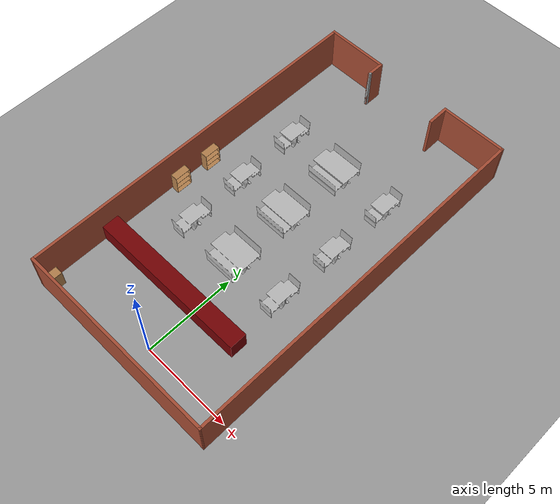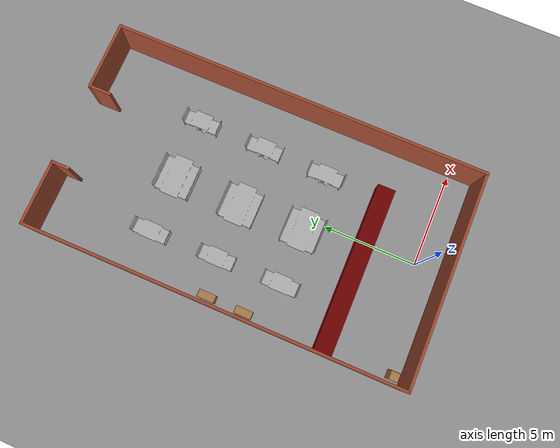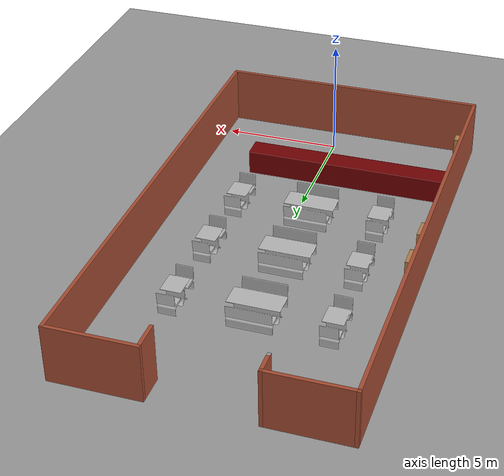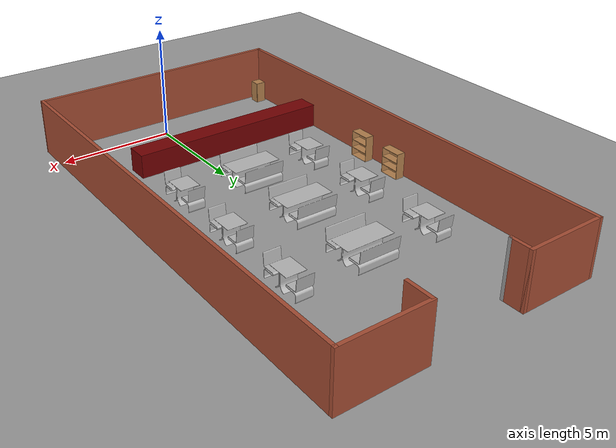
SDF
<sdf version="1.6">
 <world name="default">
  <light name="sun" type="directional">
   <pose>0 0 10 0 -0 0</pose>
   <diffuse>0.8 0.8 0.8 1</diffuse>
   <specular>0.2 0.2 0.2 1</specular>
   <attenuation>
    <range>1000</range>
    <constant>0.9</constant>
    <linear>0.01</linear>
    <quadratic>0.001</quadratic>
   </attenuation>
   <direction>-0.5 0.1 -0.9</direction>
  </light>
  <model name="ground_plane">
   <static>1</static>
   <link name="link">
    <collision name="collision">
     <geometry><plane><normal>0 0 1</normal><size>100 100</size></plane></geometry>
     <surface>
      <contact><collide_bitmask>65535</collide_bitmask></contact>
      <friction><ode><mu>100</mu><mu2>50</mu2></ode></friction>
     </surface>
    </collision>
    <visual name="visual">
     <cast_shadows>0</cast_shadows>
     <geometry><plane><normal>0 0 1</normal><size>100 100</size></plane></geometry>
     <material>
      <script><uri>file://media/materials/scripts/gazebo.material</uri><name>Gazebo/Grey</name></script>
     </material>
    </visual>
   </link>
  </model>
  <gravity>0 0 -9.8</gravity>
  <magnetic_field>6e-06 2.3e-05 -4.2e-05</magnetic_field>
  <atmosphere type="adiabatic"/>
  <physics name="default_physics" default="0" type="ode">
   <max_step_size>0.001</max_step_size>
   <real_time_factor>1</real_time_factor>
   <real_time_update_rate>1000</real_time_update_rate>
  </physics>
  <scene><ambient>0.4 0.4 0.4 1</ambient><background>0.7 0.7 0.7 1</background><shadows>1</shadows></scene>
  <audio><device>default</device></audio>
  <spherical_coordinates>
   <surface_model>EARTH_WGS84</surface_model>
   <latitude_deg>0</latitude_deg>
   <longitude_deg>0</longitude_deg>
   <elevation>0</elevation>
   <heading_deg>0</heading_deg>
  </spherical_coordinates>
  <model name="cafe2">
   <pose>-0.471159 8.71869 0 0 -0 0</pose>
   <link name="Wall_1">
    <collision name="Wall_1_Collision">
     <geometry><box><size>20.25 0.15 2.5</size></box></geometry>
     <pose>0 0 1.25 0 -0 0</pose>
    </collision>
    <visual name="Wall_1_Visual">
     <pose>0 0 1.25 0 -0 0</pose>
     <geometry><box><size>20.25 0.15 2.5</size></box></geometry>
     <material>
      <script><uri>file://media/materials/scripts/gazebo.material</uri><name>Gazebo/Bricks</name></script>
      <ambient>1 1 1 1</ambient>
     </material>
     <meta><layer>0</layer></meta>
    </visual>
    <pose>-5.63696 -0.029576 0 0 -0 -1.5708</pose>
   </link>
   <link name="Wall_10">
    <collision name="Wall_10_Collision">
     <geometry><box><size>1 0.15 2.5</size></box></geometry>
     <pose>0 0 1.25 0 -0 0</pose>
    </collision>
    <visual name="Wall_10_Visual">
     <pose>0 0 1.25 0 -0 0</pose>
     <geometry><box><size>1 0.15 2.5</size></box></geometry>
     <material>
      <script><uri>file://media/materials/scripts/gazebo.material</uri><name>Gazebo/Bricks</name></script>
      <ambient>1 1 1 1</ambient>
     </material>
     <meta><layer>0</layer></meta>
    </visual>
    <pose>-2.28696 9.59542 0 0 -0 -1.5708</pose>
   </link>
   <link name="Wall_11">
    <collision name="Wall_11_Collision">
     <geometry><box><size>0.15 0.15 2.5</size></box></geometry>
     <pose>0 0 1.25 0 -0 0</pose>
    </collision>
    <visual name="Wall_11_Visual">
     <pose>0 0 1.25 0 -0 0</pose>
     <geometry><box><size>0.15 0.15 2.5</size></box></geometry>
     <material>
      <script><uri>file://media/materials/scripts/gazebo.material</uri><name>Gazebo/Grey</name></script>
      <ambient>1 1 1 1</ambient>
     </material>
     <meta><layer>0</layer></meta>
    </visual>
    <pose>-2.28696 9.17042 0 0 -0 0</pose>
   </link>
   <link name="Wall_2">
    <collision name="Wall_2_Collision">
     <geometry><box><size>11.4241 0.15 2.5</size></box></geometry>
     <pose>0 0 1.25 0 -0 0</pose>
    </collision>
    <visual name="Wall_2_Visual">
     <pose>0 0 1.25 0 -0 0</pose>
     <geometry><box><size>11.4241 0.15 2.5</size></box></geometry>
     <material>
      <script><uri>file://media/materials/scripts/gazebo.material</uri><name>Gazebo/Bricks</name></script>
      <ambient>1 1 1 1</ambient>
     </material>
     <meta><layer>0</layer></meta>
    </visual>
    <pose>0 -10.0498 0 0 -0 0.005282</pose>
   </link>
   <link name="Wall_3">
    <collision name="Wall_3_Collision">
     <geometry><box><size>20.25 0.15 2.5</size></box></geometry>
     <pose>0 0 1.25 0 -0 0</pose>
    </collision>
    <visual name="Wall_3_Visual">
     <pose>0 0 1.25 0 -0 0</pose>
     <geometry><box><size>20.25 0.15 2.5</size></box></geometry>
     <material>
      <script><uri>file://media/materials/scripts/gazebo.material</uri><name>Gazebo/Bricks</name></script>
      <ambient>1 1 1 1</ambient>
     </material>
     <meta><layer>0</layer></meta>
    </visual>
    <pose>5.63696 0.02997 0 0 -0 1.5708</pose>
   </link>
   <link name="Wall_4">
    <collision name="Wall_4_Collision">
     <geometry><box><size>3.75 0.15 2.5</size></box></geometry>
     <pose>0 0 1.25 0 -0 0</pose>
    </collision>
    <visual name="Wall_4_Visual">
     <pose>0 0 1.25 0 -0 0</pose>
     <geometry><box><size>3.75 0.15 2.5</size></box></geometry>
     <material>
      <script><uri>file://media/materials/scripts/gazebo.material</uri><name>Gazebo/Bricks</name></script>
      <ambient>1 1 1 1</ambient>
     </material>
     <meta><layer>0</layer></meta>
    </visual>
    <pose>3.83696 10.08 0 0 -0 3.14159</pose>
   </link>
   <link name="Wall_5">
    <collision name="Wall_5_Collision">
     <geometry><box><size>1.25 0.15 2.5</size></box></geometry>
     <pose>0 0 1.25 0 -0 0</pose>
    </collision>
    <visual name="Wall_5_Visual">
     <pose>0 0 1.25 0 -0 0</pose>
     <geometry><box><size>1.25 0.15 2.5</size></box></geometry>
     <material>
      <script><uri>file://media/materials/scripts/gazebo.material</uri><name>Gazebo/Bricks</name></script>
      <ambient>1 1 1 1</ambient>
     </material>
     <meta><layer>0</layer></meta>
    </visual>
    <pose>2.03696 9.52997 0 0 -0 -1.5708</pose>
   </link>
   <link name="Wall_9">
    <collision name="Wall_9_Collision">
     <geometry><box><size>3.5 0.15 2.5</size></box></geometry>
     <pose>0 0 1.25 0 -0 0</pose>
    </collision>
    <visual name="Wall_9_Visual">
     <pose>0 0 1.25 0 -0 0</pose>
     <geometry><box><size>3.5 0.15 2.5</size></box></geometry>
     <material>
      <script><uri>file://media/materials/scripts/gazebo.material</uri><name>Gazebo/Bricks</name></script>
      <ambient>1 1 1 1</ambient>
     </material>
     <meta><layer>0</layer></meta>
    </visual>
    <pose>-3.96196 10.0204 0 0 -0 0</pose>
   </link>
   <static>1</static>
  </model>
  <model name="counter">
   <link name="link_0">
    <inertial>
     <mass>1</mass>
     <inertia><ixx>0</ixx><ixy>0</ixy><ixz>0</ixz><iyy>0</iyy><iyz>0</iyz><izz>0</izz></inertia>
    </inertial>
    <pose>-3e-06 -5e-06 0 0 -0 0</pose>
    <visual name="visual">
     <geometry>
      <mesh><uri>/home/adip/catkin_ws/src/waiter_bot_description/waiter/counter.dae</uri><scale>1 1 1</scale></mesh>
     </geometry>
    </visual>
    <collision name="collision">
     <geometry>
      <mesh><uri>/home/adip/catkin_ws/src/waiter_bot_description/waiter/counter.dae</uri><scale>1 1 1</scale></mesh>
     </geometry>
     <surface>
      <friction>
       <ode><mu>1</mu><mu2>1</mu2><fdir1>0 0 0</fdir1><slip1>0</slip1><slip2>0</slip2></ode>
       <torsional>
        <coefficient>1</coefficient>
        <patch_radius>0</patch_radius>
        <surface_radius>0</surface_radius>
        <use_patch_radius>1</use_patch_radius>
        <ode><slip>0</slip></ode>
       </torsional>
      </friction>
      <bounce><restitution_coefficient>0</restitution_coefficient><threshold>1e+06</threshold></bounce>
      <contact>
       <collide_without_contact>0</collide_without_contact>
       <collide_without_contact_bitmask>1</collide_without_contact_bitmask>
       <collide_bitmask>1</collide_bitmask>
       <ode>
        <soft_cfm>0</soft_cfm>
        <soft_erp>0.2</soft_erp>
        <kp>1e+13</kp>
        <kd>1</kd>
        <max_vel>0.01</max_vel>
        <min_depth>0</min_depth>
       </ode>
       <bullet>
        <split_impulse>1</split_impulse>
        <split_impulse_penetration_threshold>-0.01</split_impulse_penetration_threshold>
        <soft_cfm>0</soft_cfm>
        <soft_erp>0.2</soft_erp>
        <kp>1e+13</kp>
        <kd>1</kd>
       </bullet>
      </contact>
     </surface>
    </collision>
   </link>
   <static>0</static>
   <pose>-1.53072 2.85346 -0.001003 0.001628 1e-06 -1.56559</pose>
  </model>
  <model name="2seater">
   <link name="link_0">
    <inertial>
     <mass>1</mass>
     <inertia>
      <ixx>0.166667</ixx>
      <ixy>0</ixy>
      <ixz>0</ixz>
      <iyy>0.166667</iyy>
      <iyz>0</iyz>
      <izz>0.166667</izz>
     </inertia>
    </inertial>
    <visual name="visual">
     <geometry>
      <mesh><uri>/home/adip/catkin_ws/src/waiter_bot_description/waiter/2seater.dae</uri><scale>1 1 1</scale></mesh>
     </geometry>
    </visual>
    <collision name="collision">
     <geometry>
      <mesh><uri>/home/adip/catkin_ws/src/waiter_bot_description/waiter/2seater.dae</uri><scale>1 1 1</scale></mesh>
     </geometry>
     <surface>
      <friction>
       <ode><mu>1</mu><mu2>1</mu2><fdir1>0 0 0</fdir1><slip1>0</slip1><slip2>0</slip2></ode>
       <torsional>
        <coefficient>1</coefficient>
        <patch_radius>0</patch_radius>
        <surface_radius>0</surface_radius>
        <use_patch_radius>1</use_patch_radius>
        <ode><slip>0</slip></ode>
       </torsional>
      </friction>
      <bounce><restitution_coefficient>0</restitution_coefficient><threshold>1e+06</threshold></bounce>
      <contact>
       <collide_without_contact>0</collide_without_contact>
       <collide_without_contact_bitmask>1</collide_without_contact_bitmask>
       <collide_bitmask>1</collide_bitmask>
       <ode>
        <soft_cfm>0</soft_cfm>
        <soft_erp>0.2</soft_erp>
        <kp>1e+13</kp>
        <kd>1</kd>
        <max_vel>0.01</max_vel>
        <min_depth>0</min_depth>
       </ode>
       <bullet>
        <split_impulse>1</split_impulse>
        <split_impulse_penetration_threshold>-0.01</split_impulse_penetration_threshold>
        <soft_cfm>0</soft_cfm>
        <soft_erp>0.2</soft_erp>
        <kp>1e+13</kp>
        <kd>1</kd>
       </bullet>
      </contact>
     </surface>
    </collision>
   </link>
   <static>0</static>
   <pose>2.48698 6.03331 0 -0.007168 0 -1.57973</pose>
  </model>
  <model name="2seater_clone">
   <link name="link_0">
    <inertial>
     <mass>1</mass>
     <inertia>
      <ixx>0.166667</ixx>
      <ixy>0</ixy>
      <ixz>0</ixz>
      <iyy>0.166667</iyy>
      <iyz>0</iyz>
      <izz>0.166667</izz>
     </inertia>
    </inertial>
    <visual name="visual">
     <geometry>
      <mesh><uri>/home/adip/catkin_ws/src/waiter_bot_description/waiter/2seater.dae</uri><scale>1 1 1</scale></mesh>
     </geometry>
    </visual>
    <collision name="collision">
     <geometry>
      <mesh><uri>/home/adip/catkin_ws/src/waiter_bot_description/waiter/2seater.dae</uri><scale>1 1 1</scale></mesh>
     </geometry>
     <surface>
      <friction>
       <ode><mu>1</mu><mu2>1</mu2><fdir1>0 0 0</fdir1><slip1>0</slip1><slip2>0</slip2></ode>
       <torsional>
        <coefficient>1</coefficient>
        <patch_radius>0</patch_radius>
        <surface_radius>0</surface_radius>
        <use_patch_radius>1</use_patch_radius>
        <ode><slip>0</slip></ode>
       </torsional>
      </friction>
      <bounce><restitution_coefficient>0</restitution_coefficient><threshold>1e+06</threshold></bounce>
      <contact>
       <collide_without_contact>0</collide_without_contact>
       <collide_without_contact_bitmask>1</collide_without_contact_bitmask>
       <collide_bitmask>1</collide_bitmask>
       <ode>
        <soft_cfm>0</soft_cfm>
        <soft_erp>0.2</soft_erp>
        <kp>1e+13</kp>
        <kd>1</kd>
        <max_vel>0.01</max_vel>
        <min_depth>0</min_depth>
       </ode>
       <bullet>
        <split_impulse>1</split_impulse>
        <split_impulse_penetration_threshold>-0.01</split_impulse_penetration_threshold>
        <soft_cfm>0</soft_cfm>
        <soft_erp>0.2</soft_erp>
        <kp>1e+13</kp>
        <kd>1</kd>
       </bullet>
      </contact>
     </surface>
    </collision>
   </link>
   <static>0</static>
   <pose>2.55999 9.54642 0 -0.007168 -0 -1.57883</pose>
  </model>
  <model name="2seater_clone_clone">
   <link name="link_0">
    <inertial>
     <mass>1</mass>
     <inertia>
      <ixx>0.166667</ixx>
      <ixy>0</ixy>
      <ixz>0</ixz>
      <iyy>0.166667</iyy>
      <iyz>0</iyz>
      <izz>0.166667</izz>
     </inertia>
    </inertial>
    <visual name="visual">
     <geometry>
      <mesh><uri>/home/adip/catkin_ws/src/waiter_bot_description/waiter/2seater.dae</uri><scale>1 1 1</scale></mesh>
     </geometry>
    </visual>
    <collision name="collision">
     <geometry>
      <mesh><uri>/home/adip/catkin_ws/src/waiter_bot_description/waiter/2seater.dae</uri><scale>1 1 1</scale></mesh>
     </geometry>
     <surface>
      <friction>
       <ode><mu>1</mu><mu2>1</mu2><fdir1>0 0 0</fdir1><slip1>0</slip1><slip2>0</slip2></ode>
       <torsional>
        <coefficient>1</coefficient>
        <patch_radius>0</patch_radius>
        <surface_radius>0</surface_radius>
        <use_patch_radius>1</use_patch_radius>
        <ode><slip>0</slip></ode>
       </torsional>
      </friction>
      <bounce><restitution_coefficient>0</restitution_coefficient><threshold>1e+06</threshold></bounce>
      <contact>
       <collide_without_contact>0</collide_without_contact>
       <collide_without_contact_bitmask>1</collide_without_contact_bitmask>
       <collide_bitmask>1</collide_bitmask>
       <ode>
        <soft_cfm>0</soft_cfm>
        <soft_erp>0.2</soft_erp>
        <kp>1e+13</kp>
        <kd>1</kd>
        <max_vel>0.01</max_vel>
        <min_depth>0</min_depth>
       </ode>
       <bullet>
        <split_impulse>1</split_impulse>
        <split_impulse_penetration_threshold>-0.01</split_impulse_penetration_threshold>
        <soft_cfm>0</soft_cfm>
        <soft_erp>0.2</soft_erp>
        <kp>1e+13</kp>
        <kd>1</kd>
       </bullet>
      </contact>
     </surface>
    </collision>
   </link>
   <static>0</static>
   <pose>2.59893 13.1787 -4e-06 -0.007168 1e-05 -1.57883</pose>
  </model>
  <model name="2seater_clone_clone_clone">
   <link name="link_0">
    <inertial>
     <mass>1</mass>
     <inertia>
      <ixx>0.166667</ixx>
      <ixy>0</ixy>
      <ixz>0</ixz>
      <iyy>0.166667</iyy>
      <iyz>0</iyz>
      <izz>0.166667</izz>
     </inertia>
    </inertial>
    <visual name="visual">
     <geometry>
      <mesh><uri>/home/adip/catkin_ws/src/waiter_bot_description/waiter/2seater.dae</uri><scale>1 1 1</scale></mesh>
     </geometry>
    </visual>
    <collision name="collision">
     <geometry>
      <mesh><uri>/home/adip/catkin_ws/src/waiter_bot_description/waiter/2seater.dae</uri><scale>1 1 1</scale></mesh>
     </geometry>
     <surface>
      <friction>
       <ode><mu>1</mu><mu2>1</mu2><fdir1>0 0 0</fdir1><slip1>0</slip1><slip2>0</slip2></ode>
       <torsional>
        <coefficient>1</coefficient>
        <patch_radius>0</patch_radius>
        <surface_radius>0</surface_radius>
        <use_patch_radius>1</use_patch_radius>
        <ode><slip>0</slip></ode>
       </torsional>
      </friction>
      <bounce><restitution_coefficient>0</restitution_coefficient><threshold>1e+06</threshold></bounce>
      <contact>
       <collide_without_contact>0</collide_without_contact>
       <collide_without_contact_bitmask>1</collide_without_contact_bitmask>
       <collide_bitmask>1</collide_bitmask>
       <ode>
        <soft_cfm>0</soft_cfm>
        <soft_erp>0.2</soft_erp>
        <kp>1e+13</kp>
        <kd>1</kd>
        <max_vel>0.01</max_vel>
        <min_depth>0</min_depth>
       </ode>
       <bullet>
        <split_impulse>1</split_impulse>
        <split_impulse_penetration_threshold>-0.01</split_impulse_penetration_threshold>
        <soft_cfm>0</soft_cfm>
        <soft_erp>0.2</soft_erp>
        <kp>1e+13</kp>
        <kd>1</kd>
       </bullet>
      </contact>
     </surface>
    </collision>
   </link>
   <static>0</static>
   <pose>-3.66081 6.04332 -3e-06 -0.007168 -8e-06 -1.57883</pose>
  </model>
  <model name="2seater_clone_clone_clone_clone">
   <link name="link_0">
    <inertial>
     <mass>1</mass>
     <inertia>
      <ixx>0.166667</ixx>
      <ixy>0</ixy>
      <ixz>0</ixz>
      <iyy>0.166667</iyy>
      <iyz>0</iyz>
      <izz>0.166667</izz>
     </inertia>
    </inertial>
    <visual name="visual">
     <geometry>
      <mesh><uri>/home/adip/catkin_ws/src/waiter_bot_description/waiter/2seater.dae</uri><scale>1 1 1</scale></mesh>
     </geometry>
    </visual>
    <collision name="collision">
     <geometry>
      <mesh><uri>/home/adip/catkin_ws/src/waiter_bot_description/waiter/2seater.dae</uri><scale>1 1 1</scale></mesh>
     </geometry>
     <surface>
      <friction>
       <ode><mu>1</mu><mu2>1</mu2><fdir1>0 0 0</fdir1><slip1>0</slip1><slip2>0</slip2></ode>
       <torsional>
        <coefficient>1</coefficient>
        <patch_radius>0</patch_radius>
        <surface_radius>0</surface_radius>
        <use_patch_radius>1</use_patch_radius>
        <ode><slip>0</slip></ode>
       </torsional>
      </friction>
      <bounce><restitution_coefficient>0</restitution_coefficient><threshold>1e+06</threshold></bounce>
      <contact>
       <collide_without_contact>0</collide_without_contact>
       <collide_without_contact_bitmask>1</collide_without_contact_bitmask>
       <collide_bitmask>1</collide_bitmask>
       <ode>
        <soft_cfm>0</soft_cfm>
        <soft_erp>0.2</soft_erp>
        <kp>1e+13</kp>
        <kd>1</kd>
        <max_vel>0.01</max_vel>
        <min_depth>0</min_depth>
       </ode>
       <bullet>
        <split_impulse>1</split_impulse>
        <split_impulse_penetration_threshold>-0.01</split_impulse_penetration_threshold>
        <soft_cfm>0</soft_cfm>
        <soft_erp>0.2</soft_erp>
        <kp>1e+13</kp>
        <kd>1</kd>
       </bullet>
      </contact>
     </surface>
    </collision>
   </link>
   <static>0</static>
   <pose>-3.71278 9.53365 -2e-06 -0.007168 -4e-06 -1.57883</pose>
  </model>
  <model name="2seater_clone_clone_clone_clone_clone">
   <link name="link_0">
    <inertial>
     <mass>1</mass>
     <inertia>
      <ixx>0.166667</ixx>
      <ixy>0</ixy>
      <ixz>0</ixz>
      <iyy>0.166667</iyy>
      <iyz>0</iyz>
      <izz>0.166667</izz>
     </inertia>
    </inertial>
    <visual name="visual">
     <geometry>
      <mesh><uri>/home/adip/catkin_ws/src/waiter_bot_description/waiter/2seater.dae</uri><scale>1 1 1</scale></mesh>
     </geometry>
    </visual>
    <collision name="collision">
     <geometry>
      <mesh><uri>/home/adip/catkin_ws/src/waiter_bot_description/waiter/2seater.dae</uri><scale>1 1 1</scale></mesh>
     </geometry>
     <surface>
      <friction>
       <ode><mu>1</mu><mu2>1</mu2><fdir1>0 0 0</fdir1><slip1>0</slip1><slip2>0</slip2></ode>
       <torsional>
        <coefficient>1</coefficient>
        <patch_radius>0</patch_radius>
        <surface_radius>0</surface_radius>
        <use_patch_radius>1</use_patch_radius>
        <ode><slip>0</slip></ode>
       </torsional>
      </friction>
      <bounce><restitution_coefficient>0</restitution_coefficient><threshold>1e+06</threshold></bounce>
      <contact>
       <collide_without_contact>0</collide_without_contact>
       <collide_without_contact_bitmask>1</collide_without_contact_bitmask>
       <collide_bitmask>1</collide_bitmask>
       <ode>
        <soft_cfm>0</soft_cfm>
        <soft_erp>0.2</soft_erp>
        <kp>1e+13</kp>
        <kd>1</kd>
        <max_vel>0.01</max_vel>
        <min_depth>0</min_depth>
       </ode>
       <bullet>
        <split_impulse>1</split_impulse>
        <split_impulse_penetration_threshold>-0.01</split_impulse_penetration_threshold>
        <soft_cfm>0</soft_cfm>
        <soft_erp>0.2</soft_erp>
        <kp>1e+13</kp>
        <kd>1</kd>
       </bullet>
      </contact>
     </surface>
    </collision>
   </link>
   <static>0</static>
   <pose>-3.79359 13.2072 -0 -0.007168 -0 -1.57883</pose>
  </model>
  <model name="4seater">
   <link name="link_0">
    <inertial>
     <mass>1</mass>
     <inertia>
      <ixx>0.166667</ixx>
      <ixy>0</ixy>
      <ixz>0</ixz>
      <iyy>0.166667</iyy>
      <iyz>0</iyz>
      <izz>0.166667</izz>
     </inertia>
    </inertial>
    <visual name="visual">
     <geometry>
      <mesh><uri>/home/adip/catkin_ws/src/waiter_bot_description/waiter/4seater.dae</uri><scale>1 1 1</scale></mesh>
     </geometry>
    </visual>
    <collision name="collision">
     <geometry>
      <mesh><uri>/home/adip/catkin_ws/src/waiter_bot_description/waiter/4seater.dae</uri><scale>1 1 1</scale></mesh>
     </geometry>
     <surface>
      <friction>
       <ode><mu>1</mu><mu2>1</mu2><fdir1>0 0 0</fdir1><slip1>0</slip1><slip2>0</slip2></ode>
       <torsional>
        <coefficient>1</coefficient>
        <patch_radius>0</patch_radius>
        <surface_radius>0</surface_radius>
        <use_patch_radius>1</use_patch_radius>
        <ode><slip>0</slip></ode>
       </torsional>
      </friction>
      <bounce><restitution_coefficient>0</restitution_coefficient><threshold>1e+06</threshold></bounce>
      <contact>
       <collide_without_contact>0</collide_without_contact>
       <collide_without_contact_bitmask>1</collide_without_contact_bitmask>
       <collide_bitmask>1</collide_bitmask>
       <ode>
        <soft_cfm>0</soft_cfm>
        <soft_erp>0.2</soft_erp>
        <kp>1e+13</kp>
        <kd>1</kd>
        <max_vel>0.01</max_vel>
        <min_depth>0</min_depth>
       </ode>
       <bullet>
        <split_impulse>1</split_impulse>
        <split_impulse_penetration_threshold>-0.01</split_impulse_penetration_threshold>
        <soft_cfm>0</soft_cfm>
        <soft_erp>0.2</soft_erp>
        <kp>1e+13</kp>
        <kd>1</kd>
       </bullet>
      </contact>
     </surface>
    </collision>
   </link>
   <static>0</static>
   <pose>-0.729066 6.07205 -6e-06 0.001355 -0 -1.57419</pose>
  </model>
  <model name="4seater_clone">
   <link name="link_0">
    <inertial>
     <mass>1</mass>
     <inertia>
      <ixx>0.166667</ixx>
      <ixy>0</ixy>
      <ixz>0</ixz>
      <iyy>0.166667</iyy>
      <iyz>0</iyz>
      <izz>0.166667</izz>
     </inertia>
    </inertial>
    <visual name="visual">
     <geometry>
      <mesh><uri>/home/adip/catkin_ws/src/waiter_bot_description/waiter/4seater.dae</uri><scale>1 1 1</scale></mesh>
     </geometry>
    </visual>
    <collision name="collision">
     <geometry>
      <mesh><uri>/home/adip/catkin_ws/src/waiter_bot_description/waiter/4seater.dae</uri><scale>1 1 1</scale></mesh>
     </geometry>
     <surface>
      <friction>
       <ode><mu>1</mu><mu2>1</mu2><fdir1>0 0 0</fdir1><slip1>0</slip1><slip2>0</slip2></ode>
       <torsional>
        <coefficient>1</coefficient>
        <patch_radius>0</patch_radius>
        <surface_radius>0</surface_radius>
        <use_patch_radius>1</use_patch_radius>
        <ode><slip>0</slip></ode>
       </torsional>
      </friction>
      <bounce><restitution_coefficient>0</restitution_coefficient><threshold>1e+06</threshold></bounce>
      <contact>
       <collide_without_contact>0</collide_without_contact>
       <collide_without_contact_bitmask>1</collide_without_contact_bitmask>
       <collide_bitmask>1</collide_bitmask>
       <ode>
        <soft_cfm>0</soft_cfm>
        <soft_erp>0.2</soft_erp>
        <kp>1e+13</kp>
        <kd>1</kd>
        <max_vel>0.01</max_vel>
        <min_depth>0</min_depth>
       </ode>
       <bullet>
        <split_impulse>1</split_impulse>
        <split_impulse_penetration_threshold>-0.01</split_impulse_penetration_threshold>
        <soft_cfm>0</soft_cfm>
        <soft_erp>0.2</soft_erp>
        <kp>1e+13</kp>
        <kd>1</kd>
       </bullet>
      </contact>
     </surface>
    </collision>
   </link>
   <static>0</static>
   <pose>-0.781042 9.54083 -7e-06 0.001459 -0 -1.57419</pose>
  </model>
  <model name="4seater_clone_clone">
   <link name="link_0">
    <inertial>
     <mass>1</mass>
     <inertia>
      <ixx>0.166667</ixx>
      <ixy>0</ixy>
      <ixz>0</ixz>
      <iyy>0.166667</iyy>
      <iyz>0</iyz>
      <izz>0.166667</izz>
     </inertia>
    </inertial>
    <visual name="visual">
     <geometry>
      <mesh><uri>/home/adip/catkin_ws/src/waiter_bot_description/waiter/4seater.dae</uri><scale>1 1 1</scale></mesh>
     </geometry>
    </visual>
    <collision name="collision">
     <geometry>
      <mesh><uri>/home/adip/catkin_ws/src/waiter_bot_description/waiter/4seater.dae</uri><scale>1 1 1</scale></mesh>
     </geometry>
     <surface>
      <friction>
       <ode><mu>1</mu><mu2>1</mu2><fdir1>0 0 0</fdir1><slip1>0</slip1><slip2>0</slip2></ode>
       <torsional>
        <coefficient>1</coefficient>
        <patch_radius>0</patch_radius>
        <surface_radius>0</surface_radius>
        <use_patch_radius>1</use_patch_radius>
        <ode><slip>0</slip></ode>
       </torsional>
      </friction>
      <bounce><restitution_coefficient>0</restitution_coefficient><threshold>1e+06</threshold></bounce>
      <contact>
       <collide_without_contact>0</collide_without_contact>
       <collide_without_contact_bitmask>1</collide_without_contact_bitmask>
       <collide_bitmask>1</collide_bitmask>
       <ode>
        <soft_cfm>0</soft_cfm>
        <soft_erp>0.2</soft_erp>
        <kp>1e+13</kp>
        <kd>1</kd>
        <max_vel>0.01</max_vel>
        <min_depth>0</min_depth>
       </ode>
       <bullet>
        <split_impulse>1</split_impulse>
        <split_impulse_penetration_threshold>-0.01</split_impulse_penetration_threshold>
        <soft_cfm>0</soft_cfm>
        <soft_erp>0.2</soft_erp>
        <kp>1e+13</kp>
        <kd>1</kd>
       </bullet>
      </contact>
     </surface>
    </collision>
   </link>
   <static>0</static>
   <pose>-0.719904 13.1837 3.8e-05 0.001408 8e-06 -1.57419</pose>
  </model>
  <model name="cabinet">
   <static>1</static>
   <link name="cabinet_bottom_plate">
    <inertial>
     <pose>0 0 -1 0 -0 0</pose>
     <inertia><ixx>2.05</ixx><ixy>0</ixy><ixz>0</ixz><iyy>2.05</iyy><iyz>0</iyz><izz>2.05</izz></inertia>
     <mass>25</mass>
    </inertial>
    <collision name="cabinet_bottom_plate_geom">
     <pose>0 0 0.01 0 -0 0</pose>
     <geometry><box><size>0.45 0.45 0.02</size></box></geometry>
    </collision>
    <visual name="cabinet_bottom_plate_geom_visual">
     <pose>0 0 0.01 0 -0 0</pose>
     <geometry><box><size>0.45 0.45 0.02</size></box></geometry>
     <material>
      <script><uri>file://media/materials/scripts/gazebo.material</uri><name>Gazebo/Wood</name></script>
     </material>
    </visual>
    <collision name="cabinet_bottom_plate_geom_cabinet_back_plate">
     <pose>0.235 0 0.51 0 -0 0</pose>
     <geometry><box><size>0.02 0.45 1.02</size></box></geometry>
    </collision>
    <visual name="cabinet_bottom_plate_geom_cabinet_back_plate_visual">
     <pose>0.235 0 0.51 0 -0 0</pose>
     <geometry><box><size>0.02 0.45 1.02</size></box></geometry>
     <material>
      <script><uri>file://media/materials/scripts/gazebo.material</uri><name>Gazebo/Wood</name></script>
     </material>
    </visual>
    <collision name="cabinet_bottom_plate_geom_cabinet_left_plate">
     <pose>0 0.235 0.51 0 -0 0</pose>
     <geometry><box><size>0.45 0.02 1.02</size></box></geometry>
    </collision>
    <visual name="cabinet_bottom_plate_geom_cabinet_left_plate_visual">
     <pose>0 0.235 0.51 0 -0 0</pose>
     <geometry><box><size>0.45 0.02 1.02</size></box></geometry>
     <material>
      <script><uri>file://media/materials/scripts/gazebo.material</uri><name>Gazebo/Wood</name></script>
     </material>
    </visual>
    <collision name="cabinet_bottom_plate_geom_cabinet_middle_plate">
     <pose>0 0 0.51 0 -0 0</pose>
     <geometry><box><size>0.45 0.45 0.02</size></box></geometry>
    </collision>
    <visual name="cabinet_bottom_plate_geom_cabinet_middle_plate_visual">
     <pose>0 0 0.51 0 -0 0</pose>
     <geometry><box><size>0.45 0.45 0.02</size></box></geometry>
     <material>
      <script><uri>file://media/materials/scripts/gazebo.material</uri><name>Gazebo/Wood</name></script>
     </material>
    </visual>
    <collision name="cabinet_bottom_plate_geom_cabinet_right_plate">
     <pose>0 -0.235 0.51 0 -0 0</pose>
     <geometry><box><size>0.45 0.02 1.02</size></box></geometry>
    </collision>
    <visual name="cabinet_bottom_plate_geom_cabinet_right_plate_visual">
     <pose>0 -0.235 0.51 0 -0 0</pose>
     <geometry><box><size>0.45 0.02 1.02</size></box></geometry>
     <material>
      <script><uri>file://media/materials/scripts/gazebo.material</uri><name>Gazebo/Wood</name></script>
     </material>
    </visual>
    <collision name="cabinet_bottom_plate_geom_cabinet_top_plate">
     <pose>0 0 1.01 0 -0 0</pose>
     <geometry><box><size>0.45 0.45 0.02</size></box></geometry>
    </collision>
    <visual name="cabinet_bottom_plate_geom_cabinet_top_plate_visual">
     <pose>0 0 1.01 0 -0 0</pose>
     <geometry><box><size>0.45 0.45 0.02</size></box></geometry>
     <material>
      <script><uri>file://media/materials/scripts/gazebo.material</uri><name>Gazebo/Wood</name></script>
     </material>
    </visual>
   </link>
   <pose>-5.68093 -0.808942 0 0 -0 0</pose>
  </model>
  <model name="bookshelf">
   <static>1</static>
   <link name="link">
    <inertial><mass>1</mass></inertial>
    <collision name="back">
     <pose>0 0.005 0.6 0 -0 0</pose>
     <geometry><box><size>0.9 0.01 1.2</size></box></geometry>
    </collision>
    <visual name="visual1">
     <pose>0 0.005 0.6 0 -0 0</pose>
     <geometry><box><size>0.9 0.01 1.2</size></box></geometry>
     <material>
      <script><uri>file://media/materials/scripts/gazebo.material</uri><name>Gazebo/Wood</name></script>
     </material>
    </visual>
    <collision name="left_side">
     <pose>0.45 -0.195 0.6 0 -0 0</pose>
     <geometry><box><size>0.02 0.4 1.2</size></box></geometry>
    </collision>
    <visual name="visual2">
     <pose>0.45 -0.195 0.6 0 -0 0</pose>
     <geometry><box><size>0.02 0.4 1.2</size></box></geometry>
     <material>
      <script><uri>file://media/materials/scripts/gazebo.material</uri><name>Gazebo/Wood</name></script>
     </material>
    </visual>
    <collision name="right_side">
     <pose>-0.45 -0.195 0.6 0 -0 0</pose>
     <geometry><box><size>0.02 0.4 1.2</size></box></geometry>
    </collision>
    <visual name="visual3">
     <pose>-0.45 -0.195 0.6 0 -0 0</pose>
     <geometry><box><size>0.02 0.4 1.2</size></box></geometry>
     <material>
      <script><uri>file://media/materials/scripts/gazebo.material</uri><name>Gazebo/Wood</name></script>
     </material>
    </visual>
    <collision name="bottom">
     <pose>0 -0.195 0.03 0 -0 0</pose>
     <geometry><box><size>0.88 0.4 0.06</size></box></geometry>
    </collision>
    <visual name="visual4">
     <pose>0 -0.195 0.03 0 -0 0</pose>
     <geometry><box><size>0.88 0.4 0.06</size></box></geometry>
     <material>
      <script><uri>file://media/materials/scripts/gazebo.material</uri><name>Gazebo/Wood</name></script>
     </material>
    </visual>
    <collision name="top">
     <pose>0 -0.195 1.19 0 -0 0</pose>
     <geometry><box><size>0.88 0.4 0.02</size></box></geometry>
    </collision>
    <visual name="visual5">
     <pose>0 -0.195 1.19 0 -0 0</pose>
     <geometry><box><size>0.88 0.4 0.02</size></box></geometry>
     <material>
      <script><uri>file://media/materials/scripts/gazebo.material</uri><name>Gazebo/Wood</name></script>
     </material>
    </visual>
    <collision name="low_shelf">
     <pose>0 -0.195 0.43 0 -0 0</pose>
     <geometry><box><size>0.88 0.4 0.02</size></box></geometry>
    </collision>
    <visual name="visual6">
     <pose>0 -0.195 0.43 0 -0 0</pose>
     <geometry><box><size>0.88 0.4 0.02</size></box></geometry>
     <material>
      <script><uri>file://media/materials/scripts/gazebo.material</uri><name>Gazebo/Wood</name></script>
     </material>
    </visual>
    <collision name="high_shelf">
     <pose>0 -0.195 0.8 0 -0 0</pose>
     <geometry><box><size>0.88 0.4 0.02</size></box></geometry>
    </collision>
    <visual name="visual7">
     <pose>0 -0.195 0.8 0 -0 0</pose>
     <geometry><box><size>0.88 0.4 0.02</size></box></geometry>
     <material>
      <script><uri>file://media/materials/scripts/gazebo.material</uri><name>Gazebo/Wood</name></script>
     </material>
    </visual>
   </link>
   <pose>-5.95191 7.15029 0 0 -0 1.56832</pose>
  </model>
  <model name="bookshelf_clone">
   <static>1</static>
   <link name="link">
    <inertial><mass>1</mass></inertial>
    <collision name="back">
     <pose>0 0.005 0.6 0 -0 0</pose>
     <geometry><box><size>0.9 0.01 1.2</size></box></geometry>
    </collision>
    <visual name="visual1">
     <pose>0 0.005 0.6 0 -0 0</pose>
     <geometry><box><size>0.9 0.01 1.2</size></box></geometry>
     <material>
      <script><uri>file://media/materials/scripts/gazebo.material</uri><name>Gazebo/Wood</name></script>
     </material>
    </visual>
    <collision name="left_side">
     <pose>0.45 -0.195 0.6 0 -0 0</pose>
     <geometry><box><size>0.02 0.4 1.2</size></box></geometry>
    </collision>
    <visual name="visual2">
     <pose>0.45 -0.195 0.6 0 -0 0</pose>
     <geometry><box><size>0.02 0.4 1.2</size></box></geometry>
     <material>
      <script><uri>file://media/materials/scripts/gazebo.material</uri><name>Gazebo/Wood</name></script>
     </material>
    </visual>
    <collision name="right_side">
     <pose>-0.45 -0.195 0.6 0 -0 0</pose>
     <geometry><box><size>0.02 0.4 1.2</size></box></geometry>
    </collision>
    <visual name="visual3">
     <pose>-0.45 -0.195 0.6 0 -0 0</pose>
     <geometry><box><size>0.02 0.4 1.2</size></box></geometry>
     <material>
      <script><uri>file://media/materials/scripts/gazebo.material</uri><name>Gazebo/Wood</name></script>
     </material>
    </visual>
    <collision name="bottom">
     <pose>0 -0.195 0.03 0 -0 0</pose>
     <geometry><box><size>0.88 0.4 0.06</size></box></geometry>
    </collision>
    <visual name="visual4">
     <pose>0 -0.195 0.03 0 -0 0</pose>
     <geometry><box><size>0.88 0.4 0.06</size></box></geometry>
     <material>
      <script><uri>file://media/materials/scripts/gazebo.material</uri><name>Gazebo/Wood</name></script>
     </material>
    </visual>
    <collision name="top">
     <pose>0 -0.195 1.19 0 -0 0</pose>
     <geometry><box><size>0.88 0.4 0.02</size></box></geometry>
    </collision>
    <visual name="visual5">
     <pose>0 -0.195 1.19 0 -0 0</pose>
     <geometry><box><size>0.88 0.4 0.02</size></box></geometry>
     <material>
      <script><uri>file://media/materials/scripts/gazebo.material</uri><name>Gazebo/Wood</name></script>
     </material>
    </visual>
    <collision name="low_shelf">
     <pose>0 -0.195 0.43 0 -0 0</pose>
     <geometry><box><size>0.88 0.4 0.02</size></box></geometry>
    </collision>
    <visual name="visual6">
     <pose>0 -0.195 0.43 0 -0 0</pose>
     <geometry><box><size>0.88 0.4 0.02</size></box></geometry>
     <material>
      <script><uri>file://media/materials/scripts/gazebo.material</uri><name>Gazebo/Wood</name></script>
     </material>
    </visual>
    <collision name="high_shelf">
     <pose>0 -0.195 0.8 0 -0 0</pose>
     <geometry><box><size>0.88 0.4 0.02</size></box></geometry>
    </collision>
    <visual name="visual7">
     <pose>0 -0.195 0.8 0 -0 0</pose>
     <geometry><box><size>0.88 0.4 0.02</size></box></geometry>
     <material>
      <script><uri>file://media/materials/scripts/gazebo.material</uri><name>Gazebo/Wood</name></script>
     </material>
    </visual>
   </link>
   <pose>-5.93098 9.14172 0 0 -0 1.56832</pose>
  </model>
  <model name="ground_plane_0">
   <static>1</static>
   <link name="link">
    <collision name="collision">
     <geometry><plane><normal>0 0 1</normal><size>100 100</size></plane></geometry>
     <surface><friction><ode><mu>100</mu><mu2>50</mu2></ode></friction></surface>
    </collision>
    <visual name="visual">
     <cast_shadows>0</cast_shadows>
     <geometry><plane><normal>0 0 1</normal><size>100 100</size></plane></geometry>
     <material>
      <script><uri>file://media/materials/scripts/gazebo.material</uri><name>Gazebo/Grey</name></script>
     </material>
    </visual>
   </link>
   <pose>-2.90112 -2.96112 0 0 -0 0</pose>
  </model>
 </world>
</sdf>
